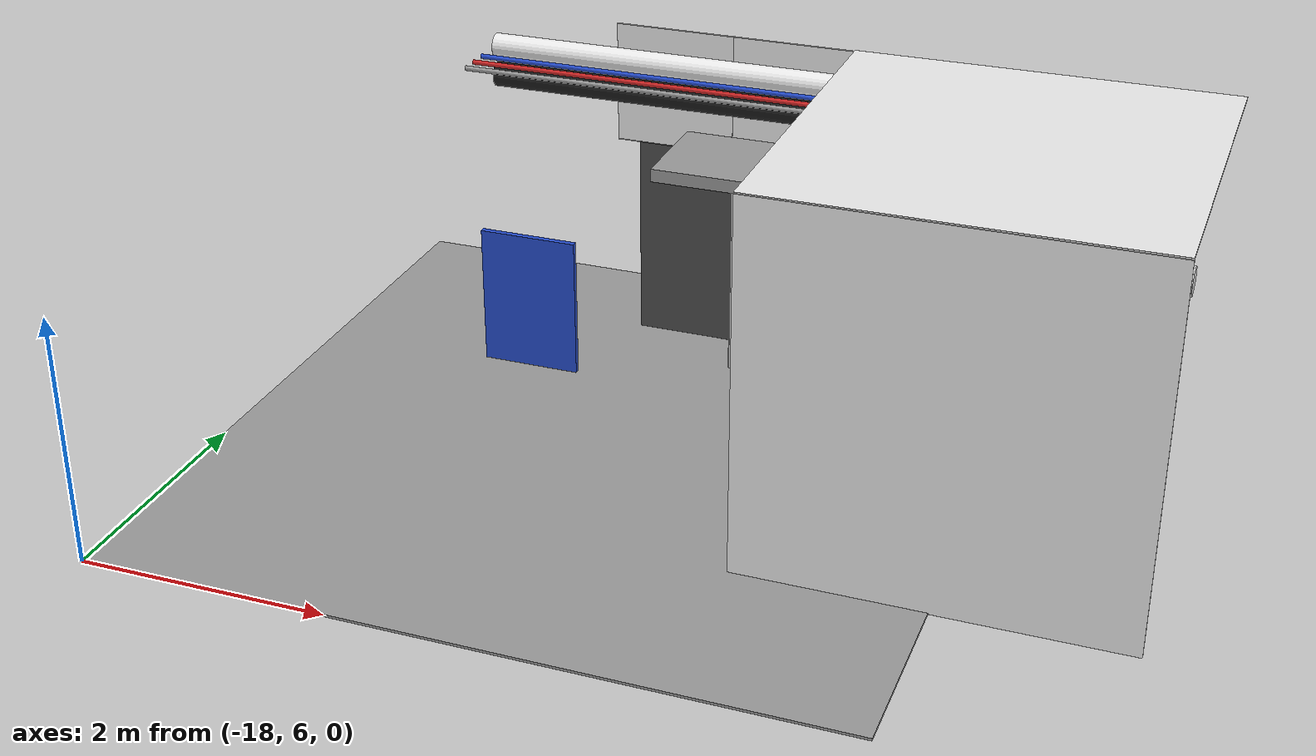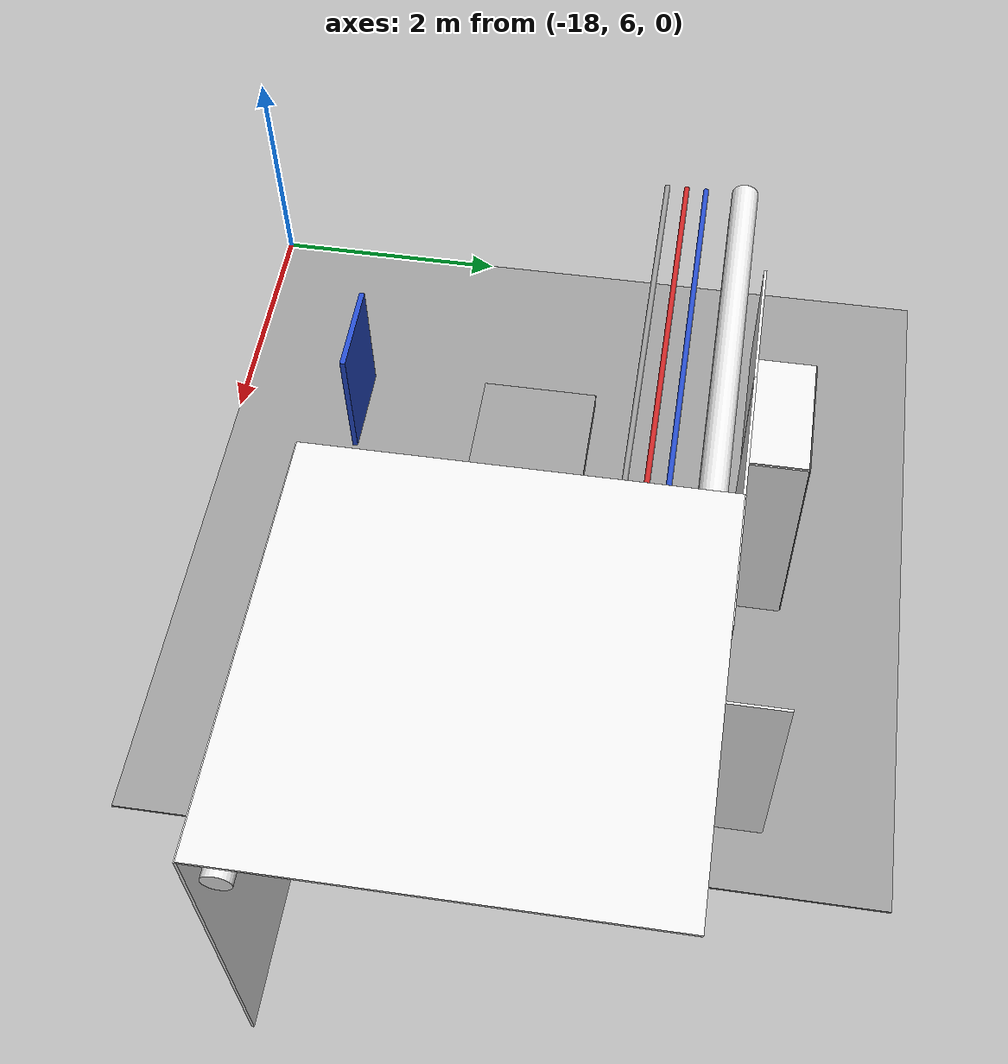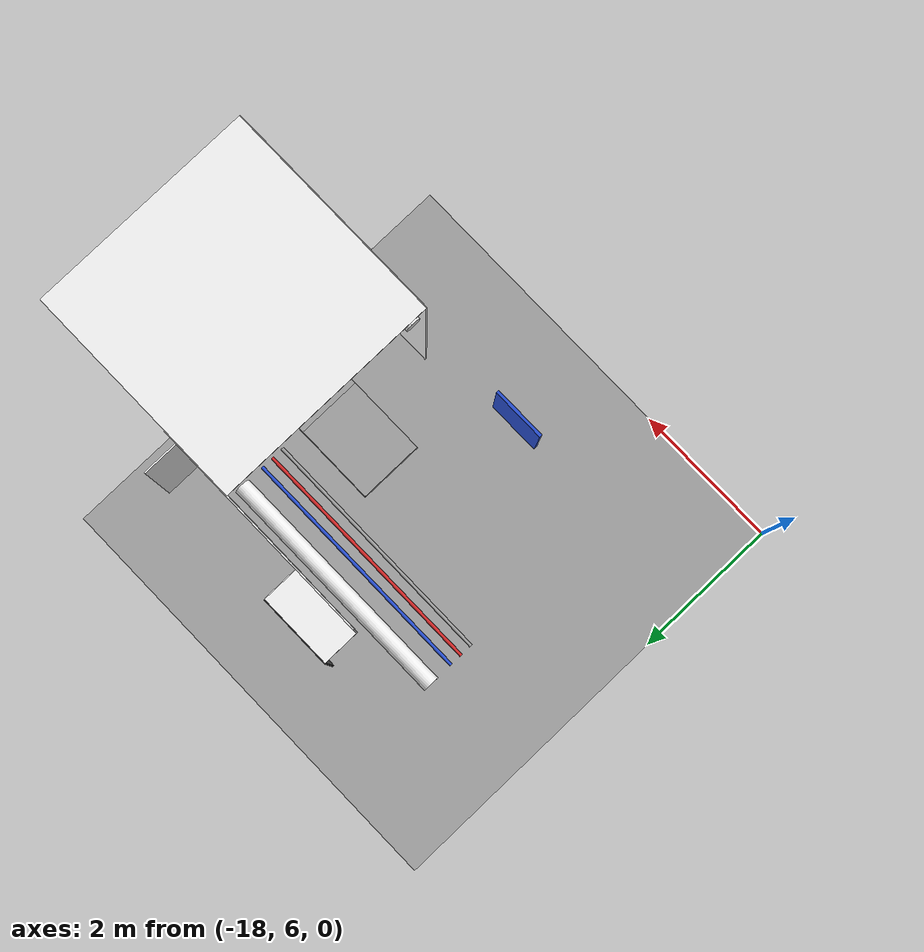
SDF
<sdf version="1.6">
 <world name="default">
  <model name="wall_left_-4_3_0_1">
   <static>1</static>
   <pose>-12.0 7.5 1.5 0.0 0.0 3.14</pose>
   <link name="link">
    <collision name="collision"><geometry><box><size>3.0 0.02 3.0</size></box></geometry></collision>
    <visual name="visual">
     <material>
      <script><name>Gazebo/White</name><uri>file://media/materials/scripts/gazebo.material</uri></script>
     </material>
     <geometry><box><size>3.0 0.02 3.0</size></box></geometry>
    </visual>
   </link>
  </model>
  <model name="wall_top_-4_3_0_1">
   <static>1</static>
   <pose>-12.0 9.0 3.0 1.57 0.0 1.57</pose>
   <link name="link">
    <collision name="collision"><geometry><box><size>3.0 0.02 3.0</size></box></geometry></collision>
    <visual name="visual">
     <material>
      <script><name>Gazebo/White</name><uri>file://media/materials/scripts/gazebo.material</uri></script>
     </material>
     <geometry><box><size>3.0 0.02 3.0</size></box></geometry>
    </visual>
   </link>
  </model>
  <model name="ceiling_1_-4_3_0_1">
   <pose>-12.0 9.0 2.55 0.0 0.0 1.57</pose>
   <link name="link_1">
    <visual name="visual">
     <geometry><box><size>0.8 1 0.1</size></box></geometry>
     <material>
      <script><uri>file://media/materials/scripts/gazebo.material</uri><name>Gazebo/Grey</name></script>
     </material>
    </visual>
    <collision name="collision"><geometry><box><size>0.8 1 0.1</size></box></geometry></collision>
   </link>
   <static>1</static>
  </model>
  <model name="ceiling_1_-4_3_2_1">
   <pose>-13.0 9.0 2.55 0.0 0.0 1.57</pose>
   <link name="link_1">
    <visual name="visual">
     <geometry><box><size>0.8 1 0.1</size></box></geometry>
     <material>
      <script><uri>file://media/materials/scripts/gazebo.material</uri><name>Gazebo/Grey</name></script>
     </material>
    </visual>
    <collision name="collision"><geometry><box><size>0.8 1 0.1</size></box></geometry></collision>
   </link>
   <static>1</static>
  </model>
  <model name="white_pipe_left_-4_3_0_1">
   <static>1</static>
   <pose>-12.0 9.0 2.76 0.0 0.0 1.57</pose>
   <link name="link_0">
    <visual name="visual">
     <pose>-1.3 0 0 1.57 0 0</pose>
     <geometry><cylinder><radius>0.1</radius><length>3.0</length></cylinder></geometry>
     <material>
      <script><uri>file://media/materials/scripts/gazebo.material</uri><name>Gazebo/White</name></script>
     </material>
    </visual>
    <collision name="collision">
     <pose>-1.3 0 0 1.57 0 0</pose>
     <geometry><cylinder><radius>0.1</radius><length>3.0</length></cylinder></geometry>
    </collision>
   </link>
  </model>
  <model name="wall_right_front_left_-4_3_0_1">
   <static>1</static>
   <pose>-13.0 10.5 1.5 0.0 0.0 3.14</pose>
   <link name="link">
    <collision name="collision"><geometry><box><size>1.0 0.02 3.0</size></box></geometry></collision>
    <visual name="visual">
     <material>
      <script><name>Gazebo/White</name><uri>file://media/materials/scripts/gazebo.material</uri></script>
     </material>
     <geometry><box><size>1.0 0.02 3.0</size></box></geometry>
    </visual>
   </link>
  </model>
  <model name="wall_right_inside_left_-4_3_0_1">
   <static>1</static>
   <pose>-12.5 10.75 1.0 0.0 0.0 1.57</pose>
   <link name="link">
    <collision name="collision"><geometry><box><size>0.5 0.02 2</size></box></geometry></collision>
    <visual name="visual">
     <material>
      <script><name>Gazebo/White</name><uri>file://media/materials/scripts/gazebo.material</uri></script>
     </material>
     <geometry><box><size>0.5 0.02 2</size></box></geometry>
    </visual>
   </link>
  </model>
  <model name="ceiling_1_-5_3_1_1">
   <pose>-14.0 9.0 2.55 0.0 0.0 1.57</pose>
   <link name="link_1">
    <visual name="visual">
     <geometry><box><size>0.8 1 0.1</size></box></geometry>
     <material>
      <script><uri>file://media/materials/scripts/gazebo.material</uri><name>Gazebo/Grey</name></script>
     </material>
    </visual>
    <collision name="collision"><geometry><box><size>0.8 1 0.1</size></box></geometry></collision>
   </link>
   <static>1</static>
  </model>
  <model name="white_pipe_right_-5_3_0_1">
   <static>1</static>
   <pose>-15.0 9.0 2.76 0.0 0.0 1.57</pose>
   <link name="link_0">
    <visual name="visual">
     <pose>1.3 0 0 1.57 0 0</pose>
     <geometry><cylinder><radius>0.1</radius><length>3.0</length></cylinder></geometry>
     <material>
      <script><uri>file://media/materials/scripts/gazebo.material</uri><name>Gazebo/White</name></script>
     </material>
    </visual>
    <collision name="collision">
     <pose>1.3 0 0 1.57 0 0</pose>
     <geometry><cylinder><radius>0.1</radius><length>3.0</length></cylinder></geometry>
    </collision>
   </link>
  </model>
  <model name="black_pipe_right_-5_3_0_1">
   <static>1</static>
   <pose>-15.0 9.0 2.76 0.0 0.0 1.57</pose>
   <link name="link_0">
    <visual name="visual">
     <pose>1.3 0 -0.25 1.57 0 0</pose>
     <geometry><cylinder><radius>0.1</radius><length>3.0</length></cylinder></geometry>
     <material>
      <script><uri>file://media/materials/scripts/gazebo.material</uri><name>Gazebo/Black</name></script>
     </material>
    </visual>
    <collision name="collision">
     <pose>1.3 0 -0.25 1.57 0 0</pose>
     <geometry><cylinder><radius>0.1</radius><length>3.0</length></cylinder></geometry>
    </collision>
   </link>
  </model>
  <model name="grey_pipe_right_-5_3_0_1">
   <static>1</static>
   <pose>-15.0 9.0 2.76 0.0 0.0 1.57</pose>
   <link name="link_0">
    <visual name="visual">
     <pose>0.7 0 0 1.57 0 0</pose>
     <geometry><cylinder><radius>0.02</radius><length>3.0</length></cylinder></geometry>
     <material>
      <script><uri>file://media/materials/scripts/gazebo.material</uri><name>Gazebo/Grey</name></script>
     </material>
    </visual>
    <collision name="collision">
     <pose>0.7 0 0 1.57 0 0</pose>
     <geometry><cylinder><radius>0.02</radius><length>3.0</length></cylinder></geometry>
    </collision>
   </link>
  </model>
  <model name="red_pipe_right_-5_3_0_1">
   <static>1</static>
   <pose>-15.0 9.0 2.76 0.0 0.0 1.57</pose>
   <link name="link_0">
    <visual name="visual">
     <pose>0.85 0 0 1.57 0 0</pose>
     <geometry><cylinder><radius>0.02</radius><length>3.0</length></cylinder></geometry>
     <material>
      <script><uri>file://media/materials/scripts/gazebo.material</uri><name>Gazebo/Red</name></script>
     </material>
    </visual>
    <collision name="collision">
     <pose>0.85 0 0 1.57 0 0</pose>
     <geometry><cylinder><radius>0.02</radius><length>3.0</length></cylinder></geometry>
    </collision>
   </link>
  </model>
  <model name="blue_pipe_right_-5_3_0_1">
   <static>1</static>
   <pose>-15.0 9.0 2.76 0.0 0.0 1.57</pose>
   <link name="link_0">
    <visual name="visual">
     <pose>1 0 0 1.57 0 0</pose>
     <geometry><cylinder><radius>0.02</radius><length>3.0</length></cylinder></geometry>
     <material>
      <script><uri>file://media/materials/scripts/gazebo.material</uri><name>Gazebo/Blue</name></script>
     </material>
    </visual>
    <collision name="collision">
     <pose>1 0 0 1.57 0 0</pose>
     <geometry><cylinder><radius>0.02</radius><length>3.0</length></cylinder></geometry>
    </collision>
   </link>
  </model>
  <model name="panel_-5_3_0_1">
   <static>1</static>
   <pose>-15.0 7.5 1.95 0.0 0.0 1.57</pose>
   <link name="link">
    <collision name="collision"><geometry><box><size>0.04 0.7 1</size></box></geometry></collision>
    <visual name="visual">
     <material>
      <script><name>Gazebo/Blue</name><uri>file://media/materials/scripts/gazebo.material</uri></script>
     </material>
     <geometry><box><size>0.04 0.7 1</size></box></geometry>
    </visual>
   </link>
  </model>
  <model name="wall_right_front_right_-5_3_0_1">
   <static>1</static>
   <pose>-14.0 10.5 1.5 0.0 0.0 3.14</pose>
   <link name="link">
    <collision name="collision"><geometry><box><size>1.0 0.02 3.0</size></box></geometry></collision>
    <visual name="visual">
     <material>
      <script><name>Gazebo/White</name><uri>file://media/materials/scripts/gazebo.material</uri></script>
     </material>
     <geometry><box><size>1.0 0.02 3.0</size></box></geometry>
    </visual>
   </link>
  </model>
  <model name="wall_right_front_up_-5_3_0_1">
   <static>1</static>
   <pose>-15.0 10.5 2.5 0.0 0.0 3.14</pose>
   <link name="link">
    <collision name="collision"><geometry><box><size>1.0 0.02 1.0</size></box></geometry></collision>
    <visual name="visual">
     <material>
      <script><name>Gazebo/White</name><uri>file://media/materials/scripts/gazebo.material</uri></script>
     </material>
     <geometry><box><size>1.0 0.02 1.0</size></box></geometry>
    </visual>
   </link>
  </model>
  <model name="wall_right_inside_back_-5_3_0_1">
   <static>1</static>
   <pose>-15.0 11.0 1.0 0.0 0.0 3.14</pose>
   <link name="link">
    <collision name="collision"><geometry><box><size>1 0.02 2</size></box></geometry></collision>
    <visual name="visual">
     <material>
      <script><name>Gazebo/DarkGrey</name><uri>file://media/materials/scripts/gazebo.material</uri></script>
     </material>
     <geometry><box><size>1 0.02 2</size></box></geometry>
    </visual>
   </link>
  </model>
  <model name="wall_right_inside_right_-5_3_0_1">
   <static>1</static>
   <pose>-14.5 10.75 1.0 0.0 0.0 1.57</pose>
   <link name="link">
    <collision name="collision"><geometry><box><size>0.5 0.02 2</size></box></geometry></collision>
    <visual name="visual">
     <material>
      <script><name>Gazebo/White</name><uri>file://media/materials/scripts/gazebo.material</uri></script>
     </material>
     <geometry><box><size>0.5 0.02 2</size></box></geometry>
    </visual>
   </link>
  </model>
  <model name="wall_right_inside_top_-5_3_0_1">
   <static>1</static>
   <pose>-15.0 10.75 2.0 1.57 0.0 3.14</pose>
   <link name="link">
    <collision name="collision"><geometry><box><size>1 0.02 0.5</size></box></geometry></collision>
    <visual name="visual">
     <material>
      <script><name>Gazebo/White</name><uri>file://media/materials/scripts/gazebo.material</uri></script>
     </material>
     <geometry><box><size>1 0.02 0.5</size></box></geometry>
    </visual>
   </link>
  </model>
  <model name="wall_bottom_-5_3_0_1">
   <static>1</static>
   <pose>-15.0 9.0 0.0 0.0 0.0 1.57</pose>
   <link name="link">
    <collision name="collision"><geometry><box><size>6.0 6.0 0.02</size></box></geometry></collision>
    <visual name="visual">
     <material>
      <script><name>Gazebo/Grey</name><uri>file://media/materials/scripts/gazebo.material</uri></script>
     </material>
     <geometry><box><size>6.0 6.0 0.02</size></box></geometry>
    </visual>
   </link>
  </model>
 </world>
</sdf>
